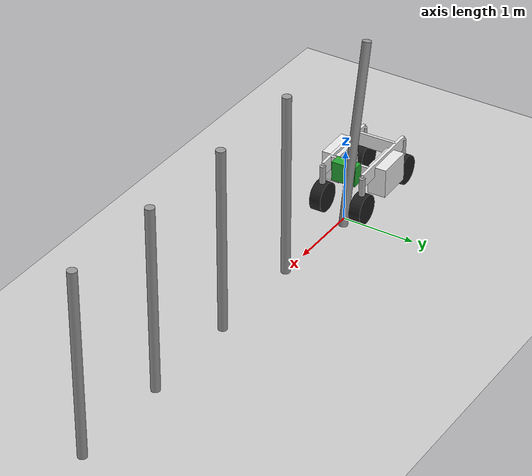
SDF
<sdf version="1.6">
 <world name="default">
  <model name="ground_plane">
   <static>1</static>
   <link name="link">
    <collision name="collision">
     <geometry><plane><normal>0 0 1</normal><size>100 100</size></plane></geometry>
     <surface><friction><ode><mu>100</mu><mu2>50</mu2></ode></friction></surface>
    </collision>
    <visual name="visual">
     <cast_shadows>0</cast_shadows>
     <geometry><plane><normal>0 0 1</normal><size>100 100</size></plane></geometry>
     <material>
      <script><uri>file://media/materials/scripts/gazebo.material</uri><name>Gazebo/Grey</name></script>
     </material>
    </visual>
   </link>
  </model>
  <model name="pole_4">
   <link name="link_0">
    <inertial>
     <mass>0.0364582</mass>
     <inertia>
      <ixx>0.00312124</ixx>
      <ixy>0</ixy>
      <ixz>0</ixz>
      <iyy>0.00312124</iyy>
      <iyz>0</iyz>
      <izz>0.00016615</izz>
     </inertia>
    </inertial>
    <visual name="visual">
     <geometry><cylinder><radius>0.06</radius><length>2.5</length></cylinder></geometry>
     <material>
      <lighting>1</lighting>
      <script><uri>file://media/materials/scripts/gazebo.material</uri><name>Gazebo/Grey</name></script>
      <ambient>0.3 0.3 0.3 1</ambient>
      <diffuse>0.7 0.7 0.7 1</diffuse>
      <specular>0.01 0.01 0.01 1</specular>
      <emissive>0 0 0 1</emissive>
      <shader type="vertex"><normal_map>__default__</normal_map></shader>
     </material>
    </visual>
    <collision name="collision">
     <geometry><cylinder><radius>0.06</radius><length>2.5</length></cylinder></geometry>
     <surface>
      <friction>
       <ode><mu>1</mu><mu2>1</mu2><fdir1>0 0 0</fdir1><slip1>0</slip1><slip2>0</slip2></ode>
       <torsional>
        <coefficient>1</coefficient>
        <patch_radius>0</patch_radius>
        <surface_radius>0</surface_radius>
        <use_patch_radius>1</use_patch_radius>
        <ode><slip>0</slip></ode>
       </torsional>
      </friction>
      <bounce><restitution_coefficient>0</restitution_coefficient><threshold>1e+06</threshold></bounce>
      <contact>
       <collide_without_contact>0</collide_without_contact>
       <collide_without_contact_bitmask>1</collide_without_contact_bitmask>
       <collide_bitmask>1</collide_bitmask>
       <ode>
        <soft_cfm>0</soft_cfm>
        <soft_erp>0.2</soft_erp>
        <kp>1e+13</kp>
        <kd>1</kd>
        <max_vel>0.01</max_vel>
        <min_depth>0</min_depth>
       </ode>
       <bullet>
        <split_impulse>1</split_impulse>
        <split_impulse_penetration_threshold>-0.01</split_impulse_penetration_threshold>
        <soft_cfm>0</soft_cfm>
        <soft_erp>0.2</soft_erp>
        <kp>1e+13</kp>
        <kd>1</kd>
       </bullet>
      </contact>
     </surface>
    </collision>
   </link>
   <static>0</static>
   <pose>-0.066321 0.086478 1.24049 -0.07787 -0.16264 0.41803</pose>
  </model>
  <model name="pole_8">
   <link name="link_0">
    <inertial>
     <mass>0.0364582</mass>
     <inertia>
      <ixx>0.00312124</ixx>
      <ixy>0</ixy>
      <ixz>0</ixz>
      <iyy>0.00312124</iyy>
      <iyz>0</iyz>
      <izz>0.00016615</izz>
     </inertia>
    </inertial>
    <visual name="visual">
     <geometry><cylinder><radius>0.06</radius><length>2.5</length></cylinder></geometry>
     <material>
      <lighting>1</lighting>
      <script><uri>file://media/materials/scripts/gazebo.material</uri><name>Gazebo/Grey</name></script>
      <ambient>0.3 0.3 0.3 1</ambient>
      <diffuse>0.7 0.7 0.7 1</diffuse>
      <specular>0.01 0.01 0.01 1</specular>
      <emissive>0 0 0 1</emissive>
      <shader type="vertex"><normal_map>__default__</normal_map></shader>
     </material>
    </visual>
    <collision name="collision">
     <geometry><cylinder><radius>0.06</radius><length>2.5</length></cylinder></geometry>
     <surface>
      <friction>
       <ode><mu>1</mu><mu2>1</mu2><fdir1>0 0 0</fdir1><slip1>0</slip1><slip2>0</slip2></ode>
       <torsional>
        <coefficient>1</coefficient>
        <patch_radius>0</patch_radius>
        <surface_radius>0</surface_radius>
        <use_patch_radius>1</use_patch_radius>
        <ode><slip>0</slip></ode>
       </torsional>
      </friction>
      <bounce><restitution_coefficient>0</restitution_coefficient><threshold>1e+06</threshold></bounce>
      <contact>
       <collide_without_contact>0</collide_without_contact>
       <collide_without_contact_bitmask>1</collide_without_contact_bitmask>
       <collide_bitmask>1</collide_bitmask>
       <ode>
        <soft_cfm>0</soft_cfm>
        <soft_erp>0.2</soft_erp>
        <kp>1e+13</kp>
        <kd>1</kd>
        <max_vel>0.01</max_vel>
        <min_depth>0</min_depth>
       </ode>
       <bullet>
        <split_impulse>1</split_impulse>
        <split_impulse_penetration_threshold>-0.01</split_impulse_penetration_threshold>
        <soft_cfm>0</soft_cfm>
        <soft_erp>0.2</soft_erp>
        <kp>1e+13</kp>
        <kd>1</kd>
       </bullet>
      </contact>
     </surface>
    </collision>
   </link>
   <static>0</static>
   <pose>1.40414 0.001004 1.24999 -1e-06 1e-06 -0.013206</pose>
  </model>
  <model name="pole_9">
   <link name="link_0">
    <inertial>
     <mass>0.0364582</mass>
     <inertia>
      <ixx>0.00312124</ixx>
      <ixy>0</ixy>
      <ixz>0</ixz>
      <iyy>0.00312124</iyy>
      <iyz>0</iyz>
      <izz>0.00016615</izz>
     </inertia>
    </inertial>
    <visual name="visual">
     <geometry><cylinder><radius>0.06</radius><length>2.5</length></cylinder></geometry>
     <material>
      <lighting>1</lighting>
      <script><uri>file://media/materials/scripts/gazebo.material</uri><name>Gazebo/Grey</name></script>
      <ambient>0.3 0.3 0.3 1</ambient>
      <diffuse>0.7 0.7 0.7 1</diffuse>
      <specular>0.01 0.01 0.01 1</specular>
      <emissive>0 0 0 1</emissive>
      <shader type="vertex"><normal_map>__default__</normal_map></shader>
     </material>
    </visual>
    <collision name="collision">
     <geometry><cylinder><radius>0.06</radius><length>2.5</length></cylinder></geometry>
     <surface>
      <friction>
       <ode><mu>1</mu><mu2>1</mu2><fdir1>0 0 0</fdir1><slip1>0</slip1><slip2>0</slip2></ode>
       <torsional>
        <coefficient>1</coefficient>
        <patch_radius>0</patch_radius>
        <surface_radius>0</surface_radius>
        <use_patch_radius>1</use_patch_radius>
        <ode><slip>0</slip></ode>
       </torsional>
      </friction>
      <bounce><restitution_coefficient>0</restitution_coefficient><threshold>1e+06</threshold></bounce>
      <contact>
       <collide_without_contact>0</collide_without_contact>
       <collide_without_contact_bitmask>1</collide_without_contact_bitmask>
       <collide_bitmask>1</collide_bitmask>
       <ode>
        <soft_cfm>0</soft_cfm>
        <soft_erp>0.2</soft_erp>
        <kp>1e+13</kp>
        <kd>1</kd>
        <max_vel>0.01</max_vel>
        <min_depth>0</min_depth>
       </ode>
       <bullet>
        <split_impulse>1</split_impulse>
        <split_impulse_penetration_threshold>-0.01</split_impulse_penetration_threshold>
        <soft_cfm>0</soft_cfm>
        <soft_erp>0.2</soft_erp>
        <kp>1e+13</kp>
        <kd>1</kd>
       </bullet>
      </contact>
     </surface>
    </collision>
   </link>
   <static>0</static>
   <pose>2.80796 0.001137 1.24999 0 2e-06 -0.031849</pose>
  </model>
  <model name="pole_10">
   <link name="link_0">
    <inertial>
     <mass>0.0364582</mass>
     <inertia>
      <ixx>0.00312124</ixx>
      <ixy>0</ixy>
      <ixz>0</ixz>
      <iyy>0.00312124</iyy>
      <iyz>0</iyz>
      <izz>0.00016615</izz>
     </inertia>
    </inertial>
    <visual name="visual">
     <geometry><cylinder><radius>0.06</radius><length>2.5</length></cylinder></geometry>
     <material>
      <lighting>1</lighting>
      <script><uri>file://media/materials/scripts/gazebo.material</uri><name>Gazebo/Grey</name></script>
      <ambient>0.3 0.3 0.3 1</ambient>
      <diffuse>0.7 0.7 0.7 1</diffuse>
      <specular>0.01 0.01 0.01 1</specular>
      <emissive>0 0 0 1</emissive>
      <shader type="vertex"><normal_map>__default__</normal_map></shader>
     </material>
    </visual>
    <collision name="collision">
     <geometry><cylinder><radius>0.06</radius><length>2.5</length></cylinder></geometry>
     <surface>
      <friction>
       <ode><mu>1</mu><mu2>1</mu2><fdir1>0 0 0</fdir1><slip1>0</slip1><slip2>0</slip2></ode>
       <torsional>
        <coefficient>1</coefficient>
        <patch_radius>0</patch_radius>
        <surface_radius>0</surface_radius>
        <use_patch_radius>1</use_patch_radius>
        <ode><slip>0</slip></ode>
       </torsional>
      </friction>
      <bounce><restitution_coefficient>0</restitution_coefficient><threshold>1e+06</threshold></bounce>
      <contact>
       <collide_without_contact>0</collide_without_contact>
       <collide_without_contact_bitmask>1</collide_without_contact_bitmask>
       <collide_bitmask>1</collide_bitmask>
       <ode>
        <soft_cfm>0</soft_cfm>
        <soft_erp>0.2</soft_erp>
        <kp>1e+13</kp>
        <kd>1</kd>
        <max_vel>0.01</max_vel>
        <min_depth>0</min_depth>
       </ode>
       <bullet>
        <split_impulse>1</split_impulse>
        <split_impulse_penetration_threshold>-0.01</split_impulse_penetration_threshold>
        <soft_cfm>0</soft_cfm>
        <soft_erp>0.2</soft_erp>
        <kp>1e+13</kp>
        <kd>1</kd>
       </bullet>
      </contact>
     </surface>
    </collision>
   </link>
   <static>0</static>
   <pose>4.2039 0.001188 1.25 -1e-06 1e-06 -0.016033</pose>
  </model>
  <model name="pole_11">
   <link name="link_0">
    <inertial>
     <mass>0.0364582</mass>
     <inertia>
      <ixx>0.00312124</ixx>
      <ixy>0</ixy>
      <ixz>0</ixz>
      <iyy>0.00312124</iyy>
      <iyz>0</iyz>
      <izz>0.00016615</izz>
     </inertia>
    </inertial>
    <visual name="visual">
     <geometry><cylinder><radius>0.06</radius><length>2.5</length></cylinder></geometry>
     <material>
      <lighting>1</lighting>
      <script><uri>file://media/materials/scripts/gazebo.material</uri><name>Gazebo/Grey</name></script>
      <ambient>0.3 0.3 0.3 1</ambient>
      <diffuse>0.7 0.7 0.7 1</diffuse>
      <specular>0.01 0.01 0.01 1</specular>
      <emissive>0 0 0 1</emissive>
      <shader type="vertex"><normal_map>__default__</normal_map></shader>
     </material>
    </visual>
    <collision name="collision">
     <geometry><cylinder><radius>0.06</radius><length>2.5</length></cylinder></geometry>
     <surface>
      <friction>
       <ode><mu>1</mu><mu2>1</mu2><fdir1>0 0 0</fdir1><slip1>0</slip1><slip2>0</slip2></ode>
       <torsional>
        <coefficient>1</coefficient>
        <patch_radius>0</patch_radius>
        <surface_radius>0</surface_radius>
        <use_patch_radius>1</use_patch_radius>
        <ode><slip>0</slip></ode>
       </torsional>
      </friction>
      <bounce><restitution_coefficient>0</restitution_coefficient><threshold>1e+06</threshold></bounce>
      <contact>
       <collide_without_contact>0</collide_without_contact>
       <collide_without_contact_bitmask>1</collide_without_contact_bitmask>
       <collide_bitmask>1</collide_bitmask>
       <ode>
        <soft_cfm>0</soft_cfm>
        <soft_erp>0.2</soft_erp>
        <kp>1e+13</kp>
        <kd>1</kd>
        <max_vel>0.01</max_vel>
        <min_depth>0</min_depth>
       </ode>
       <bullet>
        <split_impulse>1</split_impulse>
        <split_impulse_penetration_threshold>-0.01</split_impulse_penetration_threshold>
        <soft_cfm>0</soft_cfm>
        <soft_erp>0.2</soft_erp>
        <kp>1e+13</kp>
        <kd>1</kd>
       </bullet>
      </contact>
     </surface>
    </collision>
   </link>
   <static>0</static>
   <pose>5.61616 0.000904 1.25 -1e-06 1e-06 -0.014818</pose>
  </model>
  <model name="thorvald_ii">
   <link name="front_frame">
    <inertial>
     <pose>-0.486949 0 -0.042757 0 -0 0</pose>
     <mass>44.3428</mass>
     <inertia>
      <ixx>22.1052</ixx>
      <ixy>3.159</ixy>
      <ixz>4.75844</ixz>
      <iyy>21.4953</iyy>
      <iyz>7.54392</iyz>
      <izz>16.1935</izz>
     </inertia>
    </inertial>
    <collision name="front_frame_fixed_joint_lump__front_link_collision">
     <pose>-0.2 0 0 0 -0 0</pose>
     <geometry><box><size>0.04 0.57 0.19</size></box></geometry>
    </collision>
    <collision name="front_frame_fixed_joint_lump__frame_left_link_collision_1">
     <pose>-0.5475 0.285 0 0 -0 0</pose>
     <geometry><box><size>1.095 0.04 0.19</size></box></geometry>
    </collision>
    <collision name="front_frame_fixed_joint_lump__left_battery_link_collision_2">
     <pose>-0.5475 0.335 -0.15 0 -0 0</pose>
     <geometry><box><size>0.5 0.25 0.4</size></box></geometry>
    </collision>
    <collision name="front_frame_fixed_joint_lump__frame_right_link_collision_3">
     <pose>-0.5475 -0.285 0 0 -0 0</pose>
     <geometry><box><size>1.095 0.04 0.19</size></box></geometry>
    </collision>
    <collision name="front_frame_fixed_joint_lump__right_battery_link_collision_4">
     <pose>-0.5475 -0.335 -0.15 0 -0 0</pose>
     <geometry><box><size>0.5 0.25 0.4</size></box></geometry>
    </collision>
    <collision name="front_frame_fixed_joint_lump__sensor_box_link_collision_5">
     <pose>-0.1 0 0 0 -0 0</pose>
     <geometry><box><size>0.159 0.336 0.27</size></box></geometry>
    </collision>
    <collision name="front_frame_fixed_joint_lump__rear_link_collision_6">
     <pose>-0.895 0 0 0 -0 0</pose>
     <geometry><box><size>0.04 0.57 0.19</size></box></geometry>
    </collision>
    <visual name="front_frame_fixed_joint_lump__front_link_visual">
     <pose>-0.2 0 0 0 -0 0</pose>
     <geometry><box><size>0.04 0.57 0.19</size></box></geometry>
     <material>
      <script><name>Gazebo/White</name><uri>file://media/materials/scripts/gazebo.material</uri></script>
     </material>
    </visual>
    <visual name="front_frame_fixed_joint_lump__frame_left_link_visual_1">
     <pose>-0.5475 0.285 0 0 -0 0</pose>
     <geometry><box><size>1.095 0.04 0.19</size></box></geometry>
     <material>
      <script><name>Gazebo/White</name><uri>file://media/materials/scripts/gazebo.material</uri></script>
     </material>
    </visual>
    <visual name="front_frame_fixed_joint_lump__left_battery_link_visual_2">
     <pose>-0.5475 0.335 -0.15 0 -0 0</pose>
     <geometry><box><size>0.5 0.25 0.4</size></box></geometry>
     <material>
      <script><name>Gazebo/White</name><uri>file://media/materials/scripts/gazebo.material</uri></script>
     </material>
    </visual>
    <visual name="front_frame_fixed_joint_lump__frame_right_link_visual_3">
     <pose>-0.5475 -0.285 0 0 -0 0</pose>
     <geometry><box><size>1.095 0.04 0.19</size></box></geometry>
     <material>
      <script><name>Gazebo/White</name><uri>file://media/materials/scripts/gazebo.material</uri></script>
     </material>
    </visual>
    <visual name="front_frame_fixed_joint_lump__right_battery_link_visual_4">
     <pose>-0.5475 -0.335 -0.15 0 -0 0</pose>
     <geometry><box><size>0.5 0.25 0.4</size></box></geometry>
     <material>
      <script><name>Gazebo/White</name><uri>file://media/materials/scripts/gazebo.material</uri></script>
     </material>
    </visual>
    <visual name="front_frame_fixed_joint_lump__sensor_box_link_visual_5">
     <pose>-0.1 0 0 0 -0 0</pose>
     <geometry><box><size>0.159 0.336 0.27</size></box></geometry>
     <material>
      <script><name>Gazebo/Green</name><uri>file://media/materials/scripts/gazebo.material</uri></script>
     </material>
    </visual>
    <visual name="front_frame_fixed_joint_lump__rear_link_visual_6">
     <pose>-0.895 0 0 0 -0 0</pose>
     <geometry><box><size>0.04 0.57 0.19</size></box></geometry>
     <material>
      <script><name>Gazebo/White</name><uri>file://media/materials/scripts/gazebo.material</uri></script>
     </material>
    </visual>
   </link>
   <link name="front_left_leg">
    <pose>0 0.285 -0.2 0 -0 0</pose>
    <inertial>
     <mass>18.0411</mass>
     <inertia>
      <ixx>0.420701</ixx>
      <ixy>-0.0682293</ixy>
      <ixz>0.00112609</ixz>
      <iyy>0.140328</iyy>
      <iyz>0.0416406</iyz>
      <izz>0.371963</izz>
     </inertia>
    </inertial>
    <collision name="front_left_leg_collision">
     <geometry><cylinder><length>0.495</length><radius>0.04</radius></cylinder></geometry>
    </collision>
    <visual name="front_left_leg_visual">
     <geometry><cylinder><length>0.495</length><radius>0.04</radius></cylinder></geometry>
    </visual>
   </link>
   <joint name="steering2" type="revolute">
    <child>front_left_leg</child>
    <parent>front_frame</parent>
    <axis>
     <xyz>0 0 1</xyz>
     <limit><lower>-1e+16</lower><upper>1e+16</upper></limit>
     <dynamics><spring_reference>0</spring_reference><spring_stiffness>0</spring_stiffness></dynamics>
     <use_parent_model_frame>1</use_parent_model_frame>
    </axis>
   </joint>
   <link name="front_left_wheel">
    <pose>0 0.285 -0.4 -1.5708 0 0</pose>
    <inertial>
     <mass>6.38698</mass>
     <inertia>
      <ixx>0.417288</ixx>
      <ixy>-0.00126433</ixy>
      <ixz>0</ixz>
      <iyy>0.0993111</iyy>
      <iyz>-2e-09</iyz>
      <izz>0.35479</izz>
     </inertia>
    </inertial>
    <collision name="front_left_wheel_collision">
     <geometry><cylinder><length>0.16</length><radius>0.2</radius></cylinder></geometry>
    </collision>
    <visual name="front_left_wheel_visual">
     <geometry><cylinder><length>0.16</length><radius>0.2</radius></cylinder></geometry>
     <material>
      <script><name>Gazebo/Black</name><uri>file://media/materials/scripts/gazebo.material</uri></script>
     </material>
    </visual>
   </link>
   <joint name="wheel2" type="revolute">
    <child>front_left_wheel</child>
    <parent>front_left_leg</parent>
    <axis>
     <xyz>0 1 0</xyz>
     <limit><lower>-1e+16</lower><upper>1e+16</upper></limit>
     <dynamics><spring_reference>0</spring_reference><spring_stiffness>0</spring_stiffness></dynamics>
     <use_parent_model_frame>1</use_parent_model_frame>
    </axis>
   </joint>
   <link name="rear_left_leg">
    <pose>-1.095 0.285 -0.2 0 -0 0</pose>
    <inertial>
     <mass>18.0411</mass>
     <inertia>
      <ixx>0.420701</ixx>
      <ixy>-0.0682293</ixy>
      <ixz>0.00112609</ixz>
      <iyy>0.140328</iyy>
      <iyz>0.0416406</iyz>
      <izz>0.371963</izz>
     </inertia>
    </inertial>
    <collision name="rear_left_leg_collision">
     <geometry><cylinder><length>0.495</length><radius>0.04</radius></cylinder></geometry>
    </collision>
    <visual name="rear_left_leg_visual">
     <geometry><cylinder><length>0.495</length><radius>0.04</radius></cylinder></geometry>
    </visual>
   </link>
   <joint name="steering3" type="revolute">
    <child>rear_left_leg</child>
    <parent>front_frame</parent>
    <axis>
     <xyz>0 0 1</xyz>
     <limit><lower>-1e+16</lower><upper>1e+16</upper></limit>
     <dynamics><spring_reference>0</spring_reference><spring_stiffness>0</spring_stiffness></dynamics>
     <use_parent_model_frame>1</use_parent_model_frame>
    </axis>
   </joint>
   <link name="rear_left_wheel">
    <pose>-1.095 0.285 -0.4 -1.5708 0 0</pose>
    <inertial>
     <mass>6.38698</mass>
     <inertia>
      <ixx>0.417288</ixx>
      <ixy>-0.00126433</ixy>
      <ixz>0</ixz>
      <iyy>0.0993111</iyy>
      <iyz>-2e-09</iyz>
      <izz>0.35479</izz>
     </inertia>
    </inertial>
    <collision name="rear_left_wheel_collision">
     <geometry><cylinder><length>0.16</length><radius>0.2</radius></cylinder></geometry>
    </collision>
    <visual name="rear_left_wheel_visual">
     <geometry><cylinder><length>0.16</length><radius>0.2</radius></cylinder></geometry>
     <material>
      <script><name>Gazebo/Black</name><uri>file://media/materials/scripts/gazebo.material</uri></script>
     </material>
    </visual>
   </link>
   <joint name="wheel3" type="revolute">
    <child>rear_left_wheel</child>
    <parent>rear_left_leg</parent>
    <axis>
     <xyz>0 1 0</xyz>
     <limit><lower>-1e+16</lower><upper>1e+16</upper></limit>
     <dynamics><spring_reference>0</spring_reference><spring_stiffness>0</spring_stiffness></dynamics>
     <use_parent_model_frame>1</use_parent_model_frame>
    </axis>
   </joint>
   <link name="rear_right_leg">
    <pose>-1.095 -0.285 -0.2 0 -0 0</pose>
    <inertial>
     <mass>18.0411</mass>
     <inertia>
      <ixx>0.420701</ixx>
      <ixy>-0.0682293</ixy>
      <ixz>0.00112609</ixz>
      <iyy>0.140328</iyy>
      <iyz>0.0416406</iyz>
      <izz>0.371963</izz>
     </inertia>
    </inertial>
    <collision name="rear_right_leg_collision">
     <geometry><cylinder><length>0.495</length><radius>0.04</radius></cylinder></geometry>
    </collision>
    <visual name="rear_right_leg_visual">
     <geometry><cylinder><length>0.495</length><radius>0.04</radius></cylinder></geometry>
    </visual>
   </link>
   <joint name="steering0" type="revolute">
    <child>rear_right_leg</child>
    <parent>front_frame</parent>
    <axis>
     <xyz>0 0 1</xyz>
     <limit><lower>-1e+16</lower><upper>1e+16</upper></limit>
     <dynamics><spring_reference>0</spring_reference><spring_stiffness>0</spring_stiffness></dynamics>
     <use_parent_model_frame>1</use_parent_model_frame>
    </axis>
   </joint>
   <link name="rear_right_wheel">
    <pose>-1.095 -0.285 -0.4 -1.5708 0 0</pose>
    <inertial>
     <mass>6.38698</mass>
     <inertia>
      <ixx>0.417288</ixx>
      <ixy>-0.00126433</ixy>
      <ixz>0</ixz>
      <iyy>0.0993111</iyy>
      <iyz>-2e-09</iyz>
      <izz>0.35479</izz>
     </inertia>
    </inertial>
    <collision name="rear_right_wheel_collision">
     <geometry><cylinder><length>0.16</length><radius>0.2</radius></cylinder></geometry>
    </collision>
    <visual name="rear_right_wheel_visual">
     <geometry><cylinder><length>0.16</length><radius>0.2</radius></cylinder></geometry>
     <material>
      <script><name>Gazebo/Black</name><uri>file://media/materials/scripts/gazebo.material</uri></script>
     </material>
    </visual>
   </link>
   <joint name="wheel0" type="revolute">
    <child>rear_right_wheel</child>
    <parent>rear_right_leg</parent>
    <axis>
     <xyz>0 1 0</xyz>
     <limit><lower>-1e+16</lower><upper>1e+16</upper></limit>
     <dynamics><spring_reference>0</spring_reference><spring_stiffness>0</spring_stiffness></dynamics>
     <use_parent_model_frame>1</use_parent_model_frame>
    </axis>
   </joint>
   <link name="front_right_leg">
    <pose>0 -0.285 -0.2 0 -0 0</pose>
    <inertial>
     <mass>18.0411</mass>
     <inertia>
      <ixx>0.420701</ixx>
      <ixy>-0.0682293</ixy>
      <ixz>0.00112609</ixz>
      <iyy>0.140328</iyy>
      <iyz>0.0416406</iyz>
      <izz>0.371963</izz>
     </inertia>
    </inertial>
    <collision name="front_right_leg_collision">
     <geometry><cylinder><length>0.495</length><radius>0.04</radius></cylinder></geometry>
    </collision>
    <visual name="front_right_leg_visual">
     <geometry><cylinder><length>0.495</length><radius>0.04</radius></cylinder></geometry>
    </visual>
   </link>
   <joint name="steering1" type="revolute">
    <child>front_right_leg</child>
    <parent>front_frame</parent>
    <axis>
     <xyz>0 0 1</xyz>
     <limit><lower>-1e+16</lower><upper>1e+16</upper></limit>
     <dynamics><spring_reference>0</spring_reference><spring_stiffness>0</spring_stiffness></dynamics>
     <use_parent_model_frame>1</use_parent_model_frame>
    </axis>
   </joint>
   <link name="front_right_wheel">
    <pose>0 -0.285 -0.4 -1.5708 0 0</pose>
    <inertial>
     <mass>6.38698</mass>
     <inertia>
      <ixx>0.417288</ixx>
      <ixy>-0.00126433</ixy>
      <ixz>0</ixz>
      <iyy>0.0993111</iyy>
      <iyz>-2e-09</iyz>
      <izz>0.35479</izz>
     </inertia>
    </inertial>
    <collision name="front_right_wheel_collision">
     <geometry><cylinder><length>0.16</length><radius>0.2</radius></cylinder></geometry>
    </collision>
    <visual name="front_right_wheel_visual">
     <geometry><cylinder><length>0.16</length><radius>0.2</radius></cylinder></geometry>
     <material>
      <script><name>Gazebo/Black</name><uri>file://media/materials/scripts/gazebo.material</uri></script>
     </material>
    </visual>
   </link>
   <joint name="wheel1" type="revolute">
    <child>front_right_wheel</child>
    <parent>front_right_leg</parent>
    <axis>
     <xyz>0 1 0</xyz>
     <limit><lower>-1e+16</lower><upper>1e+16</upper></limit>
     <dynamics><spring_reference>0</spring_reference><spring_stiffness>0</spring_stiffness></dynamics>
     <use_parent_model_frame>1</use_parent_model_frame>
    </axis>
   </joint>
   <pose>-0.04579 -0.066926 0.599997 0 -0 0.03077</pose>
  </model>
 </world>
</sdf>
